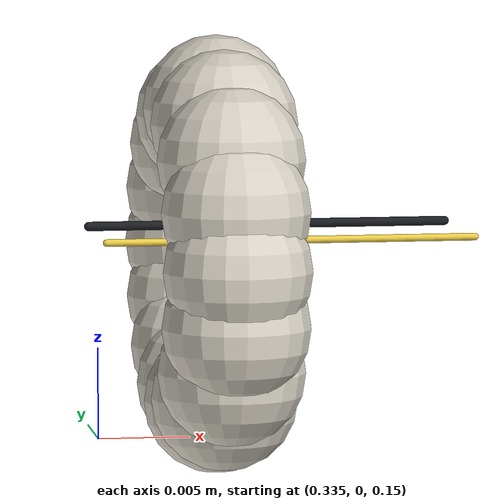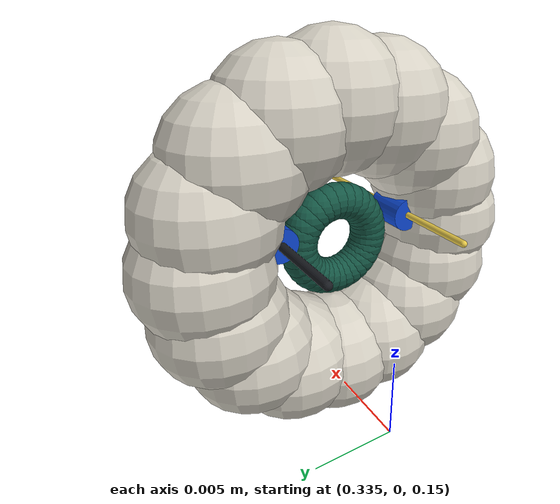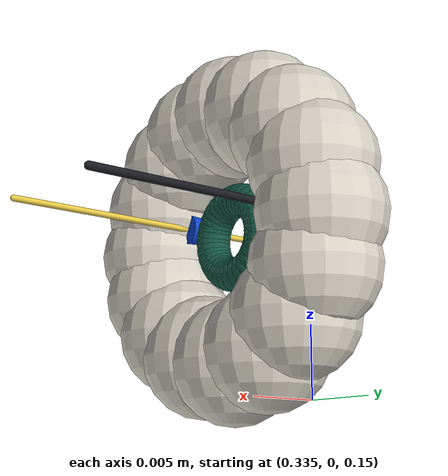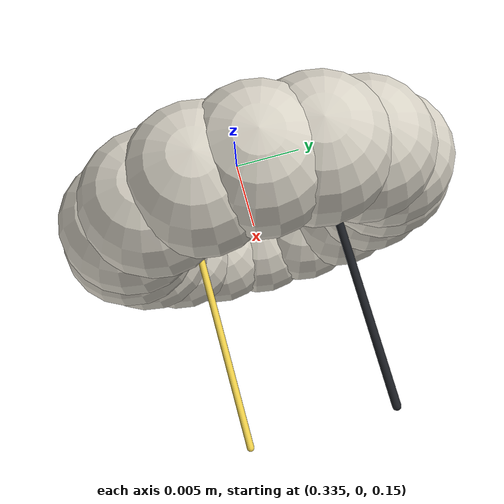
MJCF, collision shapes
<mujoco model="single_arm_ophthalmic_g95_hra_pupil_observation">
  <compiler angle="radian" coordinate="local" meshdir="../external_assets/nih_hra_eye/fundus_texture" texturedir="../external_assets/nih_hra_eye/fundus_texture"/>
  <option timestep="0.002" gravity="0 0 0"/>
  <visual>
    <global offwidth="960" offheight="720"/>
    <quality shadowsize="4096"/>
    <map znear="0.002" zfar="1.0"/>
    <headlight ambient="0.015 0.015 0.015" diffuse="0.025 0.025 0.025" specular="0.01 0.01 0.01"/>
  </visual>
  <asset>
    <mesh name="stare_pupil_projection" file="stare_im0081_pupil_projection_uv.obj"/>
    <texture name="stare_fundus_texture" type="2d" file="stare_im0081_fundus_texture.png"/>
    <material name="fundus_texture_mat" texture="stare_fundus_texture" texuniform="false" rgba="1 1 1 1" specular="0.01" shininess="0.02"/>
    <material name="iris" rgba="0.08 0.34 0.27 1" emission="0.05"/>
    <material name="sclera" rgba="0.84 0.82 0.77 1" emission="0.06"/>
    <material name="trocar" rgba="0.05 0.28 0.82 1" emission="0.04"/>
    <material name="needle" rgba="0.10 0.11 0.13 1" emission="0.03"/>
    <material name="fiber" rgba="0.92 0.80 0.28 1" emission="0.04"/>
  </asset>
  <worldbody>
    <light name="room_key" pos="0.28 -0.18 0.28" dir="0.5 0.3 -1" diffuse="0.08 0.08 0.075"/>
    <body name="pupil_observation_proxy" pos="0.352 0 0.160">
      <!-- Real STARE fundus appearance mapped into the external pupil channel.
           This is a visual projection only, not a collision or optical model. -->
      <geom name="fundus_projection" type="mesh" mesh="stare_pupil_projection" pos="0.01105 0 0" material="fundus_texture_mat" contype="0" conaffinity="0"/>

      <!-- Overlapping convex primitives approximate an anterior scleral ring
           without closing the pupil/corneal observation aperture. -->
      <geom type="sphere" pos="-0.0105 0.00800 0.00000" size="0.00400" material="sclera" contype="0" conaffinity="0"/>
      <geom type="sphere" pos="-0.0105 0.00739 0.00306" size="0.00400" material="sclera" contype="0" conaffinity="0"/>
      <geom type="sphere" pos="-0.0105 0.00566 0.00566" size="0.00400" material="sclera" contype="0" conaffinity="0"/>
      <geom type="sphere" pos="-0.0105 0.00306 0.00739" size="0.00400" material="sclera" contype="0" conaffinity="0"/>
      <geom type="sphere" pos="-0.0105 0.00000 0.00800" size="0.00400" material="sclera" contype="0" conaffinity="0"/>
      <geom type="sphere" pos="-0.0105 -0.00306 0.00739" size="0.00400" material="sclera" contype="0" conaffinity="0"/>
      <geom type="sphere" pos="-0.0105 -0.00566 0.00566" size="0.00400" material="sclera" contype="0" conaffinity="0"/>
      <geom type="sphere" pos="-0.0105 -0.00739 0.00306" size="0.00400" material="sclera" contype="0" conaffinity="0"/>
      <geom type="sphere" pos="-0.0105 -0.00800 0.00000" size="0.00400" material="sclera" contype="0" conaffinity="0"/>
      <geom type="sphere" pos="-0.0105 -0.00739 -0.00306" size="0.00400" material="sclera" contype="0" conaffinity="0"/>
      <geom type="sphere" pos="-0.0105 -0.00566 -0.00566" size="0.00400" material="sclera" contype="0" conaffinity="0"/>
      <geom type="sphere" pos="-0.0105 -0.00306 -0.00739" size="0.00400" material="sclera" contype="0" conaffinity="0"/>
      <geom type="sphere" pos="-0.0105 0.00000 -0.00800" size="0.00400" material="sclera" contype="0" conaffinity="0"/>
      <geom type="sphere" pos="-0.0105 0.00306 -0.00739" size="0.00400" material="sclera" contype="0" conaffinity="0"/>
      <geom type="sphere" pos="-0.0105 0.00566 -0.00566" size="0.00400" material="sclera" contype="0" conaffinity="0"/>
      <geom type="sphere" pos="-0.0105 0.00739 -0.00306" size="0.00400" material="sclera" contype="0" conaffinity="0"/>

      <!-- Convex primitive ring leaves a real central pupil aperture. -->
      <geom type="sphere" pos="-0.0107 0.00240 0.00000" size="0.00110" material="iris" contype="0" conaffinity="0"/>
      <geom type="sphere" pos="-0.0107 0.00222 0.00092" size="0.00110" material="iris" contype="0" conaffinity="0"/>
      <geom type="sphere" pos="-0.0107 0.00170 0.00170" size="0.00110" material="iris" contype="0" conaffinity="0"/>
      <geom type="sphere" pos="-0.0107 0.00092 0.00222" size="0.00110" material="iris" contype="0" conaffinity="0"/>
      <geom type="sphere" pos="-0.0107 0.00000 0.00240" size="0.00110" material="iris" contype="0" conaffinity="0"/>
      <geom type="sphere" pos="-0.0107 -0.00092 0.00222" size="0.00110" material="iris" contype="0" conaffinity="0"/>
      <geom type="sphere" pos="-0.0107 -0.00170 0.00170" size="0.00110" material="iris" contype="0" conaffinity="0"/>
      <geom type="sphere" pos="-0.0107 -0.00222 0.00092" size="0.00110" material="iris" contype="0" conaffinity="0"/>
      <geom type="sphere" pos="-0.0107 -0.00240 0.00000" size="0.00110" material="iris" contype="0" conaffinity="0"/>
      <geom type="sphere" pos="-0.0107 -0.00222 -0.00092" size="0.00110" material="iris" contype="0" conaffinity="0"/>
      <geom type="sphere" pos="-0.0107 -0.00170 -0.00170" size="0.00110" material="iris" contype="0" conaffinity="0"/>
      <geom type="sphere" pos="-0.0107 -0.00092 -0.00222" size="0.00110" material="iris" contype="0" conaffinity="0"/>
      <geom type="sphere" pos="-0.0107 0.00000 -0.00240" size="0.00110" material="iris" contype="0" conaffinity="0"/>
      <geom type="sphere" pos="-0.0107 0.00092 -0.00222" size="0.00110" material="iris" contype="0" conaffinity="0"/>
      <geom type="sphere" pos="-0.0107 0.00170 -0.00170" size="0.00110" material="iris" contype="0" conaffinity="0"/>
      <geom type="sphere" pos="-0.0107 0.00222 -0.00092" size="0.00110" material="iris" contype="0" conaffinity="0"/>
      <geom type="sphere" pos="-0.0107 0.00235 0.00047" size="0.00110" material="iris" contype="0" conaffinity="0"/>
      <geom type="sphere" pos="-0.0107 0.00200 0.00133" size="0.00110" material="iris" contype="0" conaffinity="0"/>
      <geom type="sphere" pos="-0.0107 0.00133 0.00200" size="0.00110" material="iris" contype="0" conaffinity="0"/>
      <geom type="sphere" pos="-0.0107 0.00047 0.00235" size="0.00110" material="iris" contype="0" conaffinity="0"/>
      <geom type="sphere" pos="-0.0107 -0.00047 0.00235" size="0.00110" material="iris" contype="0" conaffinity="0"/>
      <geom type="sphere" pos="-0.0107 -0.00133 0.00200" size="0.00110" material="iris" contype="0" conaffinity="0"/>
      <geom type="sphere" pos="-0.0107 -0.00200 0.00133" size="0.00110" material="iris" contype="0" conaffinity="0"/>
      <geom type="sphere" pos="-0.0107 -0.00235 0.00047" size="0.00110" material="iris" contype="0" conaffinity="0"/>
      <geom type="sphere" pos="-0.0107 -0.00235 -0.00047" size="0.00110" material="iris" contype="0" conaffinity="0"/>
      <geom type="sphere" pos="-0.0107 -0.00200 -0.00133" size="0.00110" material="iris" contype="0" conaffinity="0"/>
      <geom type="sphere" pos="-0.0107 -0.00133 -0.00200" size="0.00110" material="iris" contype="0" conaffinity="0"/>
      <geom type="sphere" pos="-0.0107 -0.00047 -0.00235" size="0.00110" material="iris" contype="0" conaffinity="0"/>
      <geom type="sphere" pos="-0.0107 0.00047 -0.00235" size="0.00110" material="iris" contype="0" conaffinity="0"/>
      <geom type="sphere" pos="-0.0107 0.00133 -0.00200" size="0.00110" material="iris" contype="0" conaffinity="0"/>
      <geom type="sphere" pos="-0.0107 0.00200 -0.00133" size="0.00110" material="iris" contype="0" conaffinity="0"/>
      <geom type="sphere" pos="-0.0107 0.00235 -0.00047" size="0.00110" material="iris" contype="0" conaffinity="0"/>

      <!-- Frozen left-side dimensions: trocar OD/ID/length 2.0/1.0/2.5 mm,
           needle proxy OD 0.51 mm. Right side remains a planning visual. -->
      <geom name="left_trocar" type="cylinder" pos="-0.0111 0.0042 0.0012" euler="0 1.57079632679 0" size="0.0010 0.00125" material="trocar" contype="0" conaffinity="0"/>
      <geom name="right_trocar_planning" type="cylinder" pos="-0.0111 -0.0042 0.0012" euler="0 1.57079632679 0" size="0.0010 0.00125" material="trocar" contype="0" conaffinity="0"/>
      <geom name="needle" type="capsule" fromto="-0.0170 0.0042 0.0012 0.0030 0.0042 0.0012" size="0.000255" material="needle" contype="0" conaffinity="0"/>
      <geom name="fiber_planning" type="capsule" fromto="-0.0170 -0.0042 0.0012 0.0030 -0.0042 0.0012" size="0.00020" material="fiber" contype="0" conaffinity="0"/>
      <light name="fiber_tip_light" directional="true" pos="0.0030 -0.0042 0.0012" dir="0.96 0.24 -0.08" diffuse="0.55 0.40 0.25" specular="0.08 0.06 0.04"/>
    </body>
    <camera name="pupil_external_view" mode="fixed" pos="0.315 0 0.160" xyaxes="0 -1 0 0 0 1" fovy="25"/>
  </worldbody>
</mujoco>
